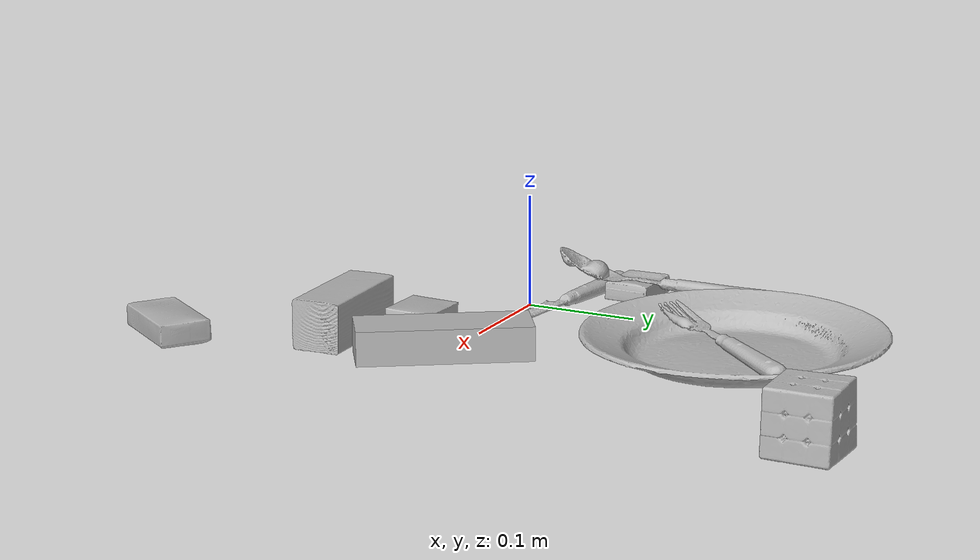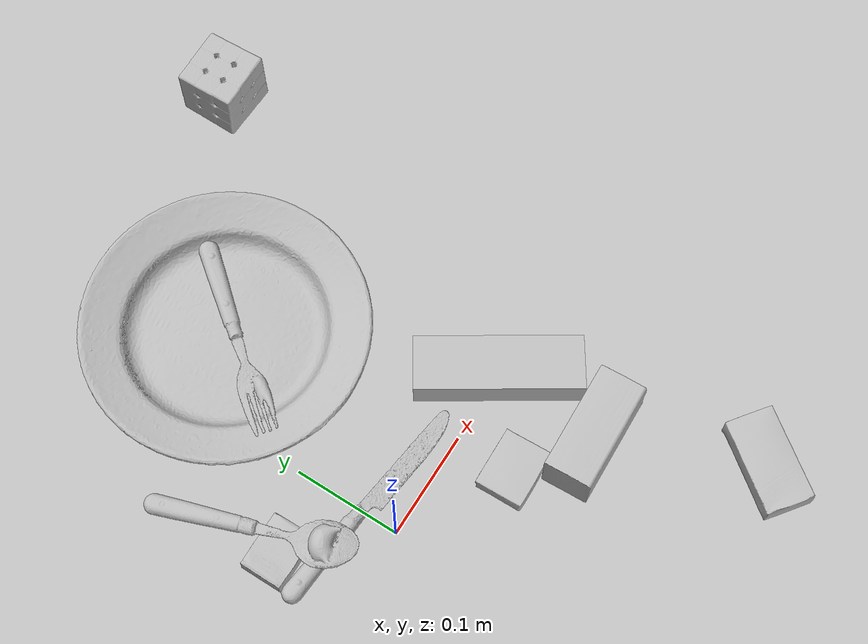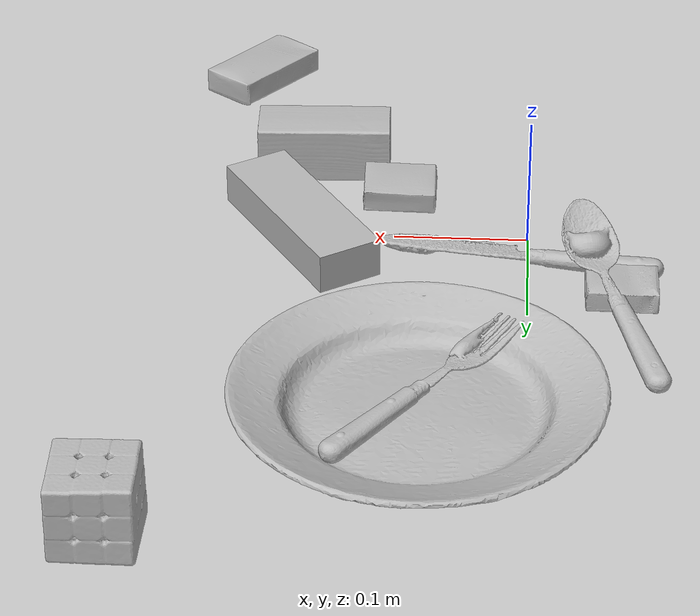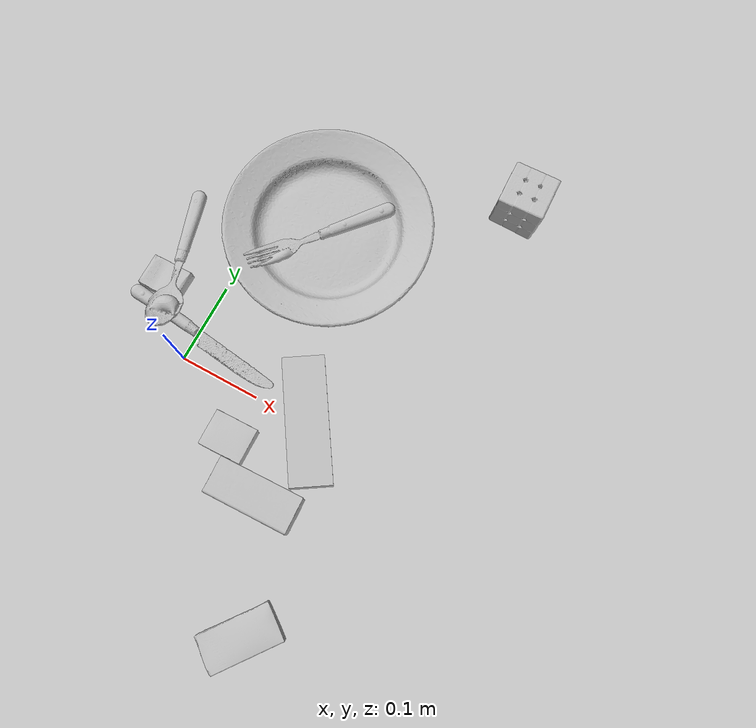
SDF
<sdf version="1.4">
  <world name="default">
    <light name="light1" type="point">
      <pose>0 0 1 0 0 0</pose>
      <diffuse>3 3 3 1</diffuse>
      <specular>3 3 3 1</specular>
    </light>
    <light name="light2" type="point">
      <pose>0 0.5 2 0 0 0</pose>
      <diffuse>1 1 1 1</diffuse>
      <specular>1 1 1 1</specular>
    </light>
    <light name="light3" type="point">
      <pose>0 0.5 2 0 0 0</pose>
      <diffuse>3 3 3 1</diffuse>
      <specular>3 3 3 1</specular>
    </light>
    <scene>
      <ambient>0.7 0.7 0.7</ambient>
    </scene>
    <model name="box11">
      <link name="link_box11">
        <collision name="default">
          <geometry>
            <mesh>
              <uri>model://cracker_box/collision_meshes/collision.obj</uri>
              <scale>0.25 0.25 0.25</scale>
            </mesh>
          </geometry>
          <surface>
            <friction>
              <ode>
                <mu>0.5</mu>
                <mu2>0.5</mu2>
              </ode>
            </friction>
          <contact>
        <ode>
            <max_vel>0</max_vel>
            <min_depth>0.0001</min_depth>
            <kp>1e8</kp>
        </ode>
    </contact></surface>
        </collision>
        <visual name="default">
          <geometry>
            <mesh>
              <uri>model://cracker_box/visual_meshes/visual.dae</uri>
              <scale>0.25 0.25 0.25</scale>
            </mesh>
          </geometry>
        </visual>
        <inertial>
          <mass>0.022244147956371307</mass>
          <pose>0.00023660442093387246 6.358561950037256e-05 -0.00042573834070935845 -0.00031620774024180285 -0.011106489600345375 0.0025467943041161943</pose>
          <inertia>
            <ixx>3.5361988e-06</ixx>
            <iyy>5.838959e-06</iyy>
            <izz>8.33273e-06</izz>
            <ixy>0</ixy>
            <ixz>0</ixz>
            <iyz>0</iyz>
          </inertia>
        </inertial>
      </link>
      <pose>-0.06833557784557343 0.07392285764217377 0.009121852926909924 -0.011975381211336487 -0.007371661512047048 0.001793916709914448</pose>
    </model>
    <model name="box12">
      <link name="link_box12">
        <collision name="default">
          <geometry>
            <mesh>
              <uri>model://wood_block/collision_meshes/collision.obj</uri>
              <scale>0.5 0.5 0.5</scale>
            </mesh>
          </geometry>
          <surface>
            <friction>
              <ode>
                <mu>0.5</mu>
                <mu2>0.5</mu2>
              </ode>
            </friction>
          <contact>
        <ode>
            <max_vel>0</max_vel>
            <min_depth>0.0001</min_depth>
            <kp>1e8</kp>
        </ode>
    </contact></surface>
        </collision>
        <visual name="default">
          <geometry>
            <mesh>
              <uri>model://wood_block/visual_meshes/visual.dae</uri>
              <scale>0.5 0.5 0.5</scale>
            </mesh>
          </geometry>
        </visual>
        <inertial>
          <mass>0.19826212525367737</mass>
          <pose>-2.9066577553749084e-06 -0.00028540476341731846 0.00013204291462898254 -0.05221087153268513 -0.0051926957009938435 -0.006861378574469354</pose>
          <inertia>
            <ixx>6.632619e-05</ixx>
            <iyy>0.00020952444</iyy>
            <izz>0.0002087407</izz>
            <ixy>0</ixy>
            <ixz>0</ixz>
            <iyz>0</iyz>
          </inertia>
        </inertial>
      </link>
      <pose>0.1598745882511139 -0.09923864901065826 0.02262927033007145 -0.005208520820447392 0.005718775926069431 0.03624686826528098</pose>
    </model>
    <model name="box13">
      <link name="link_box13">
        <collision name="default">
          <geometry>
            <mesh>
              <uri>model://pudding_box/collision_meshes/collision.obj</uri>
              <scale>0.5 0.5 0.5</scale>
            </mesh>
          </geometry>
          <surface>
            <friction>
              <ode>
                <mu>0.5</mu>
                <mu2>0.5</mu2>
              </ode>
            </friction>
          <contact>
        <ode>
            <max_vel>0</max_vel>
            <min_depth>0.0001</min_depth>
            <kp>1e8</kp>
        </ode>
    </contact></surface>
        </collision>
        <visual name="default">
          <geometry>
            <mesh>
              <uri>model://pudding_box/visual_meshes/visual.dae</uri>
              <scale>0.5 0.5 0.5</scale>
            </mesh>
          </geometry>
        </visual>
        <inertial>
          <mass>0.049741584807634354</mass>
          <pose>0.00024474109522998333 0.0004033942532259971 -0.0002594413817860186 0.005213101800084814 -0.006603799174386178 0.020079821432586128</pose>
          <inertia>
            <ixx>1.4057575e-05</ixx>
            <iyy>9.458037e-06</iyy>
            <izz>2.0759684e-05</izz>
            <ixy>0</ixy>
            <ixz>0</ixz>
            <iyz>0</iyz>
          </inertia>
        </inertial>
      </link>
      <pose>0.09845338016748428 -0.056393809616565704 0.009862903505563736 0.022349747117937645 -0.011391066570364232 -1.5479497839441676</pose>
    </model>
    <model name="box21">
      <link name="link_box21">
        <collision name="default">
          <geometry>
            <mesh>
              <uri>model://rubiks_cube/collision_meshes/collision.obj</uri>
              <scale>1.0 1.0 1.0</scale>
            </mesh>
          </geometry>
          <surface>
            <friction>
              <ode>
                <mu>0.5</mu>
                <mu2>0.5</mu2>
              </ode>
            </friction>
          <contact>
        <ode>
            <max_vel>0</max_vel>
            <min_depth>0.0001</min_depth>
            <kp>1e8</kp>
        </ode>
    </contact></surface>
        </collision>
        <visual name="default">
          <geometry>
            <mesh>
              <uri>model://rubiks_cube/visual_meshes/visual.dae</uri>
              <scale>1.0 1.0 1.0</scale>
            </mesh>
          </geometry>
        </visual>
        <inertial>
          <mass>0.14589080214500427</mass>
          <pose>2.6721043468569405e-05 5.256966323941015e-05 -7.264316082000732e-06 -0.054672881442690106 -0.09814117646273159 -0.034455034483302956</pose>
          <inertia>
            <ixx>8.061447e-05</ixx>
            <iyy>8.023852e-05</iyy>
            <izz>8.128248e-05</izz>
            <ixy>0</ixy>
            <ixz>0</ixz>
            <iyz>0</iyz>
          </inertia>
        </inertial>
      </link>
      <pose>0.2707113027572632 0.3668062090873718 0.02867896854877472 -2.6411123871852492e-06 -8.53436193422492e-07 0.021728447740946965</pose>
    </model>
    <model name="box22">
      <link name="link_box22">
        <collision name="default">
          <geometry>
            <mesh>
              <uri>model://jenga/collision_meshes/collision.obj</uri>
              <scale>1.0 1.0 1.0</scale>
            </mesh>
          </geometry>
          <surface>
            <friction>
              <ode>
                <mu>0.5</mu>
                <mu2>0.5</mu2>
              </ode>
            </friction>
          <contact>
        <ode>
            <max_vel>0</max_vel>
            <min_depth>0.0001</min_depth>
            <kp>1e8</kp>
        </ode>
    </contact></surface>
        </collision>
        <visual name="default">
          <geometry>
            <mesh>
              <uri>model://jenga/visual_meshes/visual.dae</uri>
              <scale>1.0 1.0 1.0</scale>
            </mesh>
          </geometry>
        </visual>
        <inertial>
          <mass>0.13963866233825684</mass>
          <pose>-2.502855807051674e-07 -0.00010250010382151231 -4.092339804628864e-05 0.0 -7.342154049184251e-07 0.0</pose>
          <inertia>
            <ixx>3.8641407e-05</ixx>
            <iyy>0.00026183313</iyy>
            <izz>0.00027952914</izz>
            <ixy>0</ixy>
            <ixz>0</ixz>
            <iyz>0</iyz>
          </inertia>
        </inertial>
      </link>
      <pose>0.16978083550930023 0.002317002508789301 0.01499999687075615 1.5951673036347733e-08 4.95909672408887e-10 2.1425072637835814</pose>
    </model>
    <model name="box23">
      <link name="link_box23">
        <collision name="default">
          <geometry>
            <mesh>
              <uri>model://sugar_box/collision_meshes/collision.obj</uri>
              <scale>0.5 0.5 0.5</scale>
            </mesh>
          </geometry>
          <surface>
            <friction>
              <ode>
                <mu>0.5</mu>
                <mu2>0.5</mu2>
              </ode>
            </friction>
          <contact>
        <ode>
            <max_vel>0</max_vel>
            <min_depth>0.0001</min_depth>
            <kp>1e8</kp>
        </ode>
    </contact></surface>
        </collision>
        <visual name="default">
          <geometry>
            <mesh>
              <uri>model://sugar_box/visual_meshes/visual.dae</uri>
              <scale>0.5 0.5 0.5</scale>
            </mesh>
          </geometry>
        </visual>
        <inertial>
          <mass>0.09426560252904892</mass>
          <pose>0.0005171863595023751 1.924554817378521e-05 -0.00018182402709499002 -0.00040462606744182556 0.0010506635219056535 0.0026153790218759383</pose>
          <inertia>
            <ixx>1.963546e-05</ixx>
            <iyy>6.346583e-05</iyy>
            <izz>7.597618e-05</izz>
            <ixy>0</ixy>
            <ixz>0</ixz>
            <iyz>0</iyz>
          </inertia>
        </inertial>
      </link>
      <pose>0.22098317742347717 -0.2378227263689041 0.011399304494261742 0.00077539480050737 -0.023433259280510866 0.9192962131331985</pose>
    </model>
    <model name="plate1">
      <link name="link_plate1">
        <collision name="default">
          <geometry>
            <mesh>
              <uri>model://plate/collision_meshes/collision.obj</uri>
              <scale>1.0 1.0 1.0</scale>
            </mesh>
          </geometry>
          <surface>
            <friction>
              <ode>
                <mu>0.5</mu>
                <mu2>0.5</mu2>
              </ode>
            </friction>
          <contact>
        <ode>
            <max_vel>0</max_vel>
            <min_depth>0.0001</min_depth>
            <kp>1e8</kp>
        </ode>
    </contact></surface>
        </collision>
        <visual name="default">
          <geometry>
            <mesh>
              <uri>model://plate/visual_meshes/visual.dae</uri>
              <scale>1.0 1.0 1.0</scale>
            </mesh>
          </geometry>
        </visual>
        <inertial>
          <mass>0.11197491735219955</mass>
          <pose>-0.0006044617621228099 0.00027825823053717613 -0.001056199544109404 0.00221882520869589 -0.003225452482750881 0.45259630068278056</pose>
          <inertia>
            <ixx>0.0005238209</ixx>
            <iyy>0.00051881076</iyy>
            <izz>0.0010245154</izz>
            <ixy>0</ixy>
            <ixz>0</ixz>
            <iyz>0</iyz>
          </inertia>
        </inertial>
      </link>
      <pose>0.07319819927215576 0.22637037932872772 0.013732990249991417 5.823064026626307e-08 2.6859367077444276e-08 0.5818453148446231</pose>
    </model>
    <model name="silverware1">
      <link name="link_silverware1">
        <collision name="default">
          <geometry>
            <mesh>
              <uri>model://knife/collision_meshes/collision.obj</uri>
              <scale>1.0 1.0 1.0</scale>
            </mesh>
          </geometry>
          <surface>
            <friction>
              <ode>
                <mu>0.5</mu>
                <mu2>0.5</mu2>
              </ode>
            </friction>
          <contact>
        <ode>
            <max_vel>0</max_vel>
            <min_depth>0.0001</min_depth>
            <kp>1e8</kp>
        </ode>
    </contact></surface>
        </collision>
        <visual name="default">
          <geometry>
            <mesh>
              <uri>model://knife/visual_meshes/visual.dae</uri>
              <scale>1.0 1.0 1.0</scale>
            </mesh>
          </geometry>
        </visual>
        <inertial>
          <mass>0.01465720683336258</mass>
          <pose>-0.023785248398780823 0.0015275123296305537 5.062019408796914e-05 0.07304601322977639 0.017248415474028462 -0.007409829977624996</pose>
          <inertia>
            <ixx>4.1603096e-07</ixx>
            <iyy>5.6310615e-05</iyy>
            <izz>5.6444613e-05</izz>
            <ixy>0</ixy>
            <ixz>0</ixz>
            <iyz>0</iyz>
          </inertia>
        </inertial>
      </link>
      <pose>0.006478507071733475 0.030415143817663193 0.007946519181132317 -0.023906933047742537 -0.01454251162529808 -0.13197459014029297</pose>
    </model>
    <model name="silverware2">
      <link name="link_silverware2">
        <collision name="default">
          <geometry>
            <mesh>
              <uri>model://spoon/collision_meshes/collision.obj</uri>
              <scale>1.0 1.0 1.0</scale>
            </mesh>
          </geometry>
          <surface>
            <friction>
              <ode>
                <mu>0.5</mu>
                <mu2>0.5</mu2>
              </ode>
            </friction>
          <contact>
        <ode>
            <max_vel>0</max_vel>
            <min_depth>0.0001</min_depth>
            <kp>1e8</kp>
        </ode>
    </contact></surface>
        </collision>
        <visual name="default">
          <geometry>
            <mesh>
              <uri>model://spoon/visual_meshes/visual.dae</uri>
              <scale>1.0 1.0 1.0</scale>
            </mesh>
          </geometry>
        </visual>
        <inertial>
          <mass>0.03463635593652725</mass>
          <pose>-0.005526320077478886 -0.0016034176805987954 -0.0007271658396348357 0.035218626746325574 -0.03906584480927328 0.006150611928774215</pose>
          <inertia>
            <ixx>1.9265303e-06</ixx>
            <iyy>0.0001317902</iyy>
            <izz>0.00013274024</izz>
            <ixy>0</ixy>
            <ixz>0</ixz>
            <iyz>0</iyz>
          </inertia>
        </inertial>
      </link>
      <pose>-0.06229019537568092 0.10217777639627457 0.019340436905622482 0.016071636958084362 -0.10806244726843742 -1.272555818268282</pose>
    </model>
    <model name="silverware3">
      <link name="link_silverware3">
        <collision name="default">
          <geometry>
            <mesh>
              <uri>model://fork/collision_meshes/collision.obj</uri>
              <scale>1.0 1.0 1.0</scale>
            </mesh>
          </geometry>
          <surface>
            <friction>
              <ode>
                <mu>0.5</mu>
                <mu2>0.5</mu2>
              </ode>
            </friction>
          <contact>
        <ode>
            <max_vel>0</max_vel>
            <min_depth>0.0001</min_depth>
            <kp>1e8</kp>
        </ode>
    </contact></surface>
        </collision>
        <visual name="default">
          <geometry>
            <mesh>
              <uri>model://fork/visual_meshes/visual.dae</uri>
              <scale>1.0 1.0 1.0</scale>
            </mesh>
          </geometry>
        </visual>
        <inertial>
          <mass>0.019285527989268303</mass>
          <pose>-0.029570043087005615 0.0004658823017962277 0.0003218861238565296 -0.013551447953525298 -0.010977835959949084 0.014453901308334693</pose>
          <inertia>
            <ixx>6.760669e-07</ixx>
            <iyy>5.0348972e-05</iyy>
            <izz>5.065136e-05</izz>
            <ixy>0</ixy>
            <ixz>0</ixz>
            <iyz>0</iyz>
          </inertia>
        </inertial>
      </link>
      <pose>0.07095244526863098 0.21437034010887146 0.014699623920023441 0.0500923207602578 -0.022033811571749884 -2.248217349398643</pose>
    </model>
  <physics type="ode">
      <max_contacts>50</max_contacts>
      <ode>
        <solver>
          <type>quick</type>
          <iters>75</iters>
        </solver>
        <constraints>
          <contact_max_correcting_vel>0</contact_max_correcting_vel>
          <contact_surface_layer>0</contact_surface_layer>
        </constraints>
      </ode>
    </physics></world>
</sdf>
